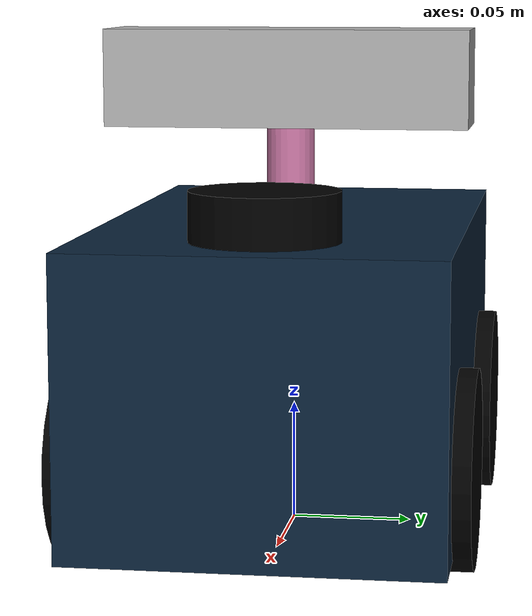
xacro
<?xml version="1.0"?>
<robot name="elementbot_4w_diff" xmlns:xacro="http://www.ros.org/wiki/xacro">

      <!-- Define materials -->
      <material name="black">
        <color rgba="0.0 0.0 0.0 1.0"/>
      </material>

      <material name="blue">
        <color rgba="0.041 0.138 0.23 0.99"/>
      </material>

      <!-- Define parameters -->
      <xacro:property name="base_length" value="0.25"/>
      <xacro:property name="base_width" value="0.15"/>
      <xacro:property name="base_height" value="0.12"/>
      <xacro:property name="wheel_radius" value="0.04"/>
      <xacro:property name="wheel_length" value="0.025"/>
      <xacro:property name="wheel_separation_width" value="0.12"/>
      <xacro:property name="wheel_separation_length" value="0.14"/>
      <xacro:property name="wheel_offset" value="0.03"/>
      <xacro:property name="base_offset" value="0.07"/>

      <xacro:property name="rgbd_offset_x" value="0.01" />
      <xacro:property name="rgbd_offset_y" value="0.0" />
      <xacro:property name="rgbd_offset_z" value="0.12" />

      <xacro:property name="laser_radius" value="0.03"/>
      <xacro:property name="laser_length" value="0.04"/>

      <xacro:property name="lidar_offset_x" value="0.08" />
      <xacro:property name="lidar_offset_y" value="0.0" />
      <xacro:property name="lidar_offset_z" value="0.06" />

      <!-- Base footprint -->
      <link name="base_footprint">
        <visual>
          <geometry>
            <sphere radius="0.001"/>
          </geometry>
        </visual>
      </link>

      <!-- Base link -->
      <link name="base_link">
        <visual>
          <geometry>
            <box size="${base_length} ${base_width} ${base_height}"/>
          </geometry>
          <material name="blue"/>
        </visual>
        <collision>
          <geometry>
            <box size="${base_length} ${base_width} ${base_height}"/>
          </geometry>
        </collision>
        <inertial>
            <mass value="5.0"/>
            <inertia ixx="0.01" ixy="0.0" ixz="0.0" iyy="0.01" iyz="0.0" izz="0.01"/>
        </inertial>
      </link>

      <gazebo reference="base_link">
          <material>Gazebo/Blue</material>
      </gazebo>

      <joint name="base_link2base_footprint" type="fixed">
        <parent link="base_footprint"/>
        <child link="base_link"/>
        <origin xyz="0 0 ${base_offset}"/>
      </joint>

      <!-- left_front_wheel_link -->
      <link name="left_front_wheel_link">
        <visual>
          <origin rpy="1.57 0.0 0.0"/>
          <geometry>
            <cylinder length="0.025" radius="0.04"/>
          </geometry>
          <material name="black"/>
        </visual>
        <collision>
          <origin rpy="1.57 0.0 0.0"/>
          <geometry>
            <cylinder length="0.025" radius="0.04"/>
          </geometry>
        </collision>

        <inertial>
          <mass value="0.2"/>
          <inertia ixx="0.000190416666667" ixy="0" ixz="0" iyy="0.0001904" iyz="0" izz="0.00036"/>
        </inertial>
      </link>

      <gazebo reference="left_front_wheel_link">
          <material>Gazebo/Black</material>
      </gazebo>

      <joint name="left_front_wheel_joint" type="continuous">
          <origin xyz="0.07 0.07 -0.03"/>
          <parent link="base_link"/>
          <child link="left_front_wheel_link"/>
          <axis xyz="0 1 0"/>
      </joint>

      <!-- right_front_wheel_link -->
      <link name="right_front_wheel_link">
        <visual>
          <origin rpy="1.57 0.0 0.0"/>
          <geometry>
            <cylinder length="0.025" radius="0.04"/>
          </geometry>
          <material name="black"/>
        </visual>
        <collision>
            <origin rpy="1.57 0.0 0.0"/>
            <geometry>
              <cylinder length="0.025" radius="0.04"/>
            </geometry>
        </collision>

        <inertial>
          <mass value="0.2"/>
          <inertia ixx="0.000190416666667" ixy="0" ixz="0" iyy="0.0001904" iyz="0" izz="0.00036"/>
        </inertial>
      </link>

      <gazebo reference="right_front_wheel_link">
          <material>Gazebo/Black</material>
      </gazebo>

      <joint name="right_front_wheel_joint" type="continuous">
          <origin xyz="0.07 -0.07 -0.03"/>
          <parent link="base_link"/>
          <child link="right_front_wheel_link"/>
          <axis xyz="0 1 0"/>
      </joint>

      <!-- left_back_wheel_link -->
      <link name="left_back_wheel_link">
        <visual>
          <origin rpy="1.57 0.0 0.0"/>
          <geometry>
            <cylinder length="0.025" radius="0.04"/>
          </geometry>
          <material name="black"/>
        </visual>
        <collision>
          <origin rpy="1.57 0.0 0.0"/>
          <geometry>
            <cylinder length="0.025" radius="0.04"/>
          </geometry>
        </collision>

        <inertial>
          <mass value="0.2"/>
          <inertia ixx="0.000190416666667" ixy="0" ixz="0" iyy="0.0001904" iyz="0" izz="0.00036"/>
        </inertial>
      </link>

      <gazebo reference="left_back_wheel_link">
          <material>Gazebo/Black</material>
      </gazebo>

      <joint name="left_back_wheel_joint" type="continuous">
          <origin xyz="-0.07 0.07 -0.03"/>
          <parent link="base_link"/>
          <child link="left_back_wheel_link"/>
          <axis xyz="0 1 0"/>
      </joint>

      <!-- right_back_wheel_link -->
      <link name="right_back_wheel_link">
        <visual>
          <origin xyz="0.0 0.0 0.0" rpy="1.57 0.0 0.0" />
          <geometry>
            <cylinder length="0.025" radius="0.04"/>
          </geometry>
          <material name="black"/>
        </visual>
        <collision>
          <origin xyz="0.0 0.0 0.0" rpy="1.57 0.0 0.0" />
          <geometry>
            <cylinder length="0.025" radius="0.04"/>
          </geometry>
        </collision>

        <inertial>
          <mass value="0.2"/>
          <inertia ixx="0.000190416666667" ixy="0" ixz="0" iyy="0.0001904" iyz="0" izz="0.00036"/>
        </inertial>
      </link>

      <gazebo reference="right_back_wheel_link">
          <material>Gazebo/Black</material>
      </gazebo>

      <joint name="right_back_wheel_joint" type="continuous">
          <origin xyz="-0.07 -0.07 -0.03"/>
          <parent link="base_link"/>
          <child link="right_back_wheel_link"/>
          <axis xyz="0 1 0"/>
      </joint>

      <!-- rgbd support -->
      <link name="support_link">
        <visual>
          <geometry>
            <cylinder radius="0.01" length="0.04"/>
          </geometry>
        </visual>
      </link>
      <joint name="support_joint" type="fixed">
        <origin xyz="0.01 0 0.08" rpy="0 0 0"/>
        <parent link="base_link"/>
        <child link="support_link"/>
      </joint>

      <!-- rgbd -->
      <xacro:include filename="$(find elementbot_gazebo)/urdf/sensors/rgbd_gazebo_harmonic.xacro" />

      <joint name="rgbd_joint" type="fixed">
          <origin xyz="${rgbd_offset_x} ${rgbd_offset_y} ${rgbd_offset_z}" rpy="0 0 0" />
          <parent link="base_link"/>
          <child link="rgbd_link"/>
      </joint>

      <xacro:rgbd_camera prefix="rgbd"/>

      <!-- lidar -->

      <xacro:include filename="$(find elementbot_gazebo)/urdf/sensors/lidar_gazebo_harmonic.xacro" />

      <joint name="lidar_joint" type="fixed">
          <origin xyz="${lidar_offset_x} ${lidar_offset_y} ${lidar_offset_z}" rpy="0 0 0" />
          <parent link="base_link"/>
          <child link="laser_link"/>
      </joint>

      <xacro:laser prefix="laser"/>

      <!-- controller -->
      <gazebo>
        <plugin filename="libignition-gazebo-diff-drive-system.so"
                name="ignition::gazebo::systems::DiffDrive">
              <update_rate>30</update_rate>
              <left_joint>left_front_wheel_joint</left_joint>
              <right_joint>right_front_wheel_joint</right_joint>
              <wheel_separation>0.14</wheel_separation>
              <wheel_radius>0.04</wheel_radius>
              <topic>cmd_vel</topic>
              <publish_odom>true</publish_odom>
              <publish_odom_tf>true</publish_odom_tf>
              <publish_wheel_tf>true</publish_wheel_tf>
              <odometry_topic>odom</odometry_topic>
              <odometry_frame>odom</odometry_frame>
              <robot_base_frame>base_footprint</robot_base_frame>
        </plugin>

        <plugin filename="libignition-gazebo-diff-drive-system.so"
                name="ignition::gazebo::systems::DiffDrive">
              <update_rate>30</update_rate>
              <left_joint>left_back_wheel_joint</left_joint>
              <right_joint>right_back_wheel_joint</right_joint>
              <wheel_separation>0.14</wheel_separation>
              <wheel_radius>0.04</wheel_radius>
              <topic>cmd_vel</topic>
              <publish_odom>true</publish_odom>
              <publish_odom_tf>true</publish_odom_tf>
              <publish_wheel_tf>true</publish_wheel_tf>
              <odometry_topic>odom</odometry_topic>
              <odometry_frame>odom</odometry_frame>
              <robot_base_frame>base_footprint</robot_base_frame>
        </plugin>

        <plugin
          filename="ignition-gazebo-sensors-system"
          name="ignition::gazebo::systems::Sensors">
          <render_engine>ogre2</render_engine>
        </plugin>
        <plugin
          filename="ignition-gazebo-user-commands-system"
          name="ignition::gazebo::systems::UserCommands">
        </plugin>
        <plugin
          filename="ignition-gazebo-scene-broadcaster-system"
          name="ignition::gazebo::systems::SceneBroadcaster">
        </plugin>
        <plugin
          filename="ignition-gazebo-joint-state-publisher-system"
          name="ignition::gazebo::systems::JointStatePublisher"/>
        <plugin
          filename="ignition-gazebo-odometry-publisher-system"
          name="ignition::gazebo::systems::OdometryPublisher">
          <odom_frame>odom</odom_frame>
          <robot_base_frame>base_footprint</robot_base_frame>
        </plugin>
    </gazebo>

</robot>

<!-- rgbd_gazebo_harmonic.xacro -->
<robot xmlns:xacro="http://www.ros.org/wiki/xacro" name="rgbd_camera">

    <xacro:property name="M_PI" value="3.1415926"/>

    <xacro:macro name="rgbd_camera" params="prefix:=camera">
        <!-- Create rgbd reference frame -->
        <!-- Add mesh for rgbd -->
        <link name="${prefix}_link">
            <origin xyz="0 0 0" rpy="0 0 0"/>
            <visual>
                <origin xyz="0 0 0" rpy="0 0 ${M_PI/2}"/>
                <geometry>
                    <box size="0.15 0.04 0.04" />
                </geometry>
            </visual>
            <collision>
                <geometry>
                    <box size="0.07 0.3 0.09"/>
                </geometry>
            </collision>
        </link>

        <joint name="${prefix}_optical_joint" type="fixed">
            <origin xyz="0 0 0" rpy="-1.5708 0 -1.5708"/>
            <parent link="${prefix}_link"/>
            <child link="${prefix}_frame_optical"/>
        </joint>

        <link name="${prefix}_frame_optical"/>

        <gazebo reference="${prefix}_link">
			<sensor name="rgbd_camera" type="rgbd_camera">
				<camera>
					<horizontal_fov>1.047</horizontal_fov>
					<image>
						<width>640</width>
						<height>480</height>
					</image>
					<clip>
						<near>0.1</near>
						<far>100</far>
					</clip>
				</camera>
				<always_on>1</always_on>
				<update_rate>20</update_rate>
				<visualize>true</visualize>
				<topic>rgbd_camera</topic>
				<enable_metrics>true</enable_metrics>
				<ignition_frame_id>${prefix}_link</ignition_frame_id>
			</sensor>
        </gazebo>

        <!-- 新增 RGB 相機插件 -->
        <plugin filename="libgazebo_ros_camera.so" name="rgb_plugin">
            <ros>
                <namespace>${prefix}</namespace>
            </ros>
            <camera_name>rgb</camera_name>
            <frame_name>${prefix}_optical_frame</frame_name>
        </plugin>

        <!-- 在深度插件中增加輸出格式校驗 -->
        <plugin filename="libgazebo_ros_depth_camera.so" name="depth_plugin">
            <ros>
                <namespace>${prefix}</namespace>
            </ros>
            <output_type>32FC1</output_type> <!-- 強制指定輸出格式 -->
            <min_depth>0.15</min_depth>      <!-- 最低有效深度 -->
            <max_depth>10.0</max_depth>      <!-- 最高有效深度 -->
            <clip>
                <near>0.15</near>            <!-- 需與 min_depth 一致 -->
                <far>10.0</far>              <!-- 需與 max_depth 一致 -->
            </clip>
        </plugin>

    </xacro:macro>
</robot>

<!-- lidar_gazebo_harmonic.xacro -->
<robot xmlns:xacro="http://www.ros.org/wiki/xacro" name="laser">

    <xacro:macro name="laser" params="prefix:=laser">
        <!-- Create laser reference frame -->
        <link name="${prefix}_link">
            <visual>
                <geometry>
                    <cylinder radius="${laser_radius}" length="${laser_length}"/>
                </geometry>
                <material name="black"/>
            </visual>
            <collision>
                <geometry>
                    <cylinder radius="${laser_radius}" length="${laser_length}"/>
                </geometry>
            </collision>
        </link>

        <gazebo reference="${prefix}_link">
            <sensor type="gpu_lidar" name="gpu_lidar">
				<topic>lidar</topic>
				<update_rate>20</update_rate>
				<ray>
					<scan>
						<horizontal>
							<samples>360</samples>
							<resolution>1</resolution>
							<min_angle>-3.14</min_angle>
							<max_angle>3.14</max_angle>
						</horizontal>
						<vertical>
							<samples>1</samples>
							<resolution>0.01</resolution>
							<min_angle>0</min_angle>
							<max_angle>0</max_angle>
						</vertical>
					</scan>
					<range>
						<min>0.08</min>
						<max>10.0</max>
						<resolution>0.01</resolution>
					</range>
				</ray>
				<alwaysOn>1</alwaysOn>
				<visualize>true</visualize>
				<ignition_frame_id>${prefix}_link</ignition_frame_id>
            </sensor>
        </gazebo>

    </xacro:macro>
</robot>
